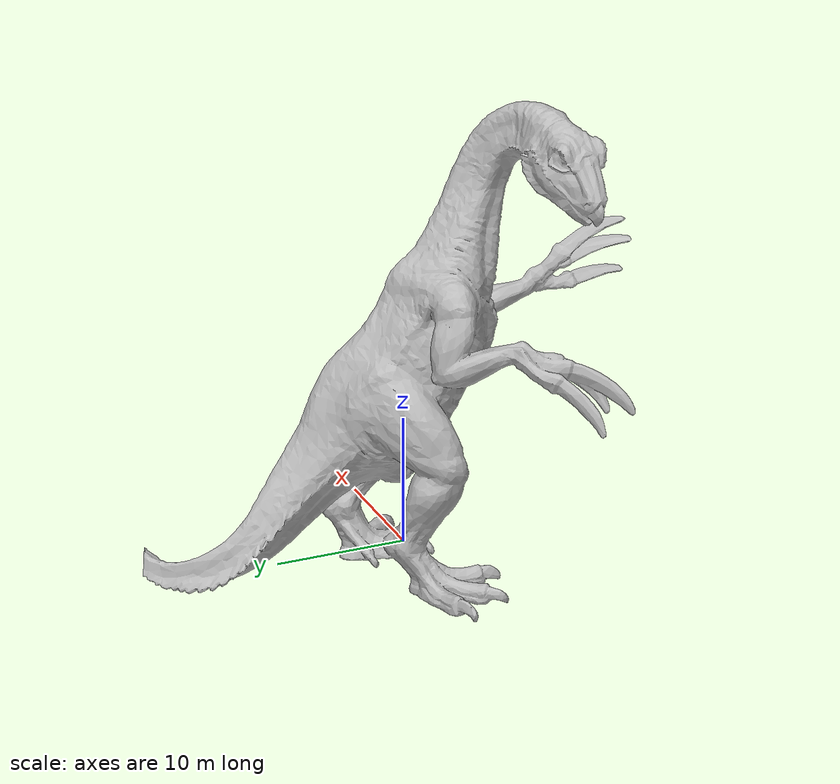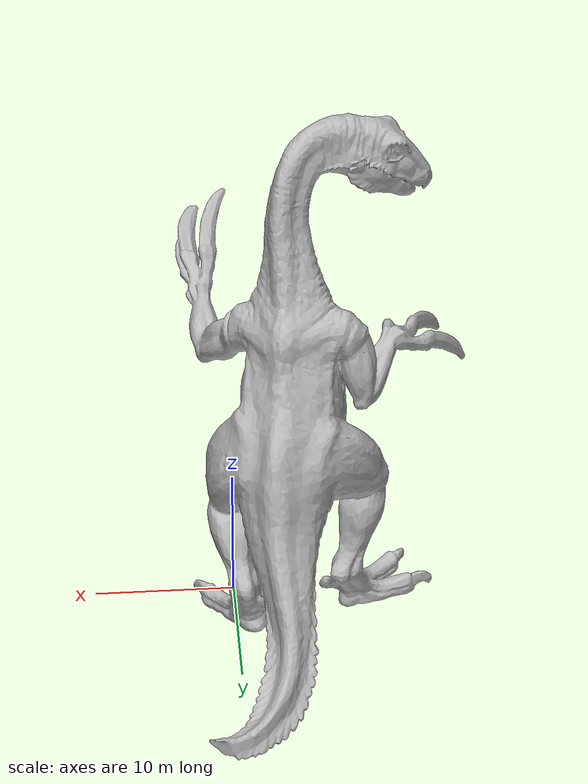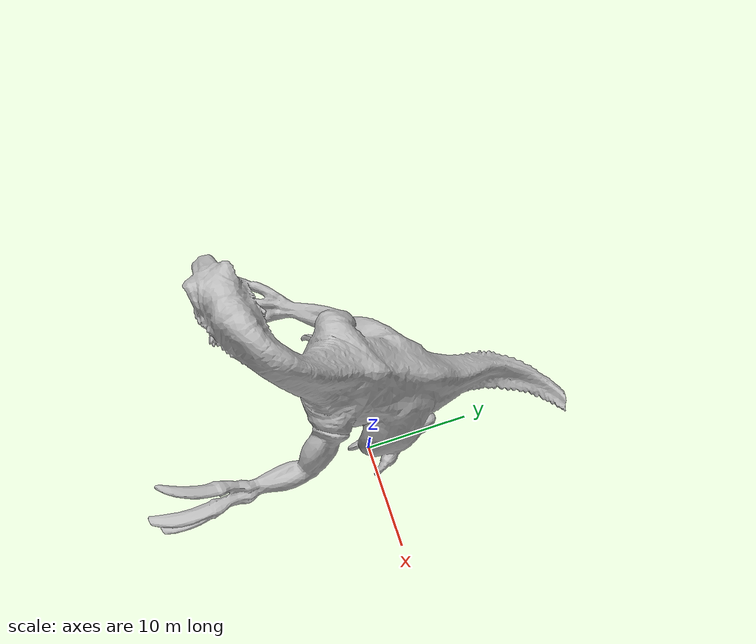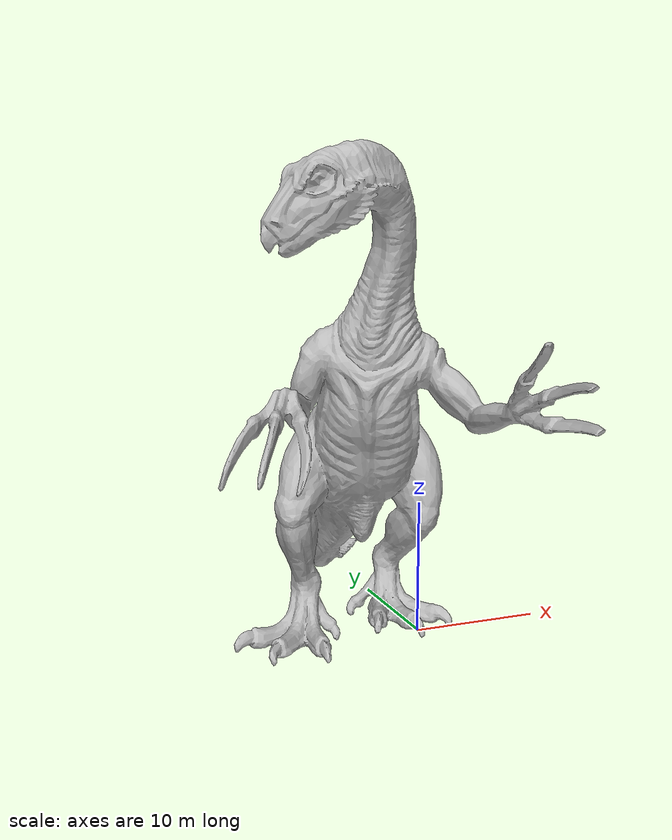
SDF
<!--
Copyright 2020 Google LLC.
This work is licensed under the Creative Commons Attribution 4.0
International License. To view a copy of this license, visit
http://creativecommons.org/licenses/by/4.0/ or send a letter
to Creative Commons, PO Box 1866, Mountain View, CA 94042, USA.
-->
<?xml version="1.0" ?>
<sdf version="1.6">
  <model name="Weisshai_Great_White_Shark">
    <link name="link_0">
      <static>true</static>
      <visual name="visual">
        <geometry>
          <mesh>
            <uri>meshes/model.obj</uri>
            <scale>180 180 180</scale>
          </mesh>
        </geometry>
      </visual>
      <collision name="collision_0">
        <geometry>
          <mesh>
            <uri>meshes/model.obj</uri>
          </mesh>
        </geometry>
      </collision>
    </link>
  </model>
</sdf>
